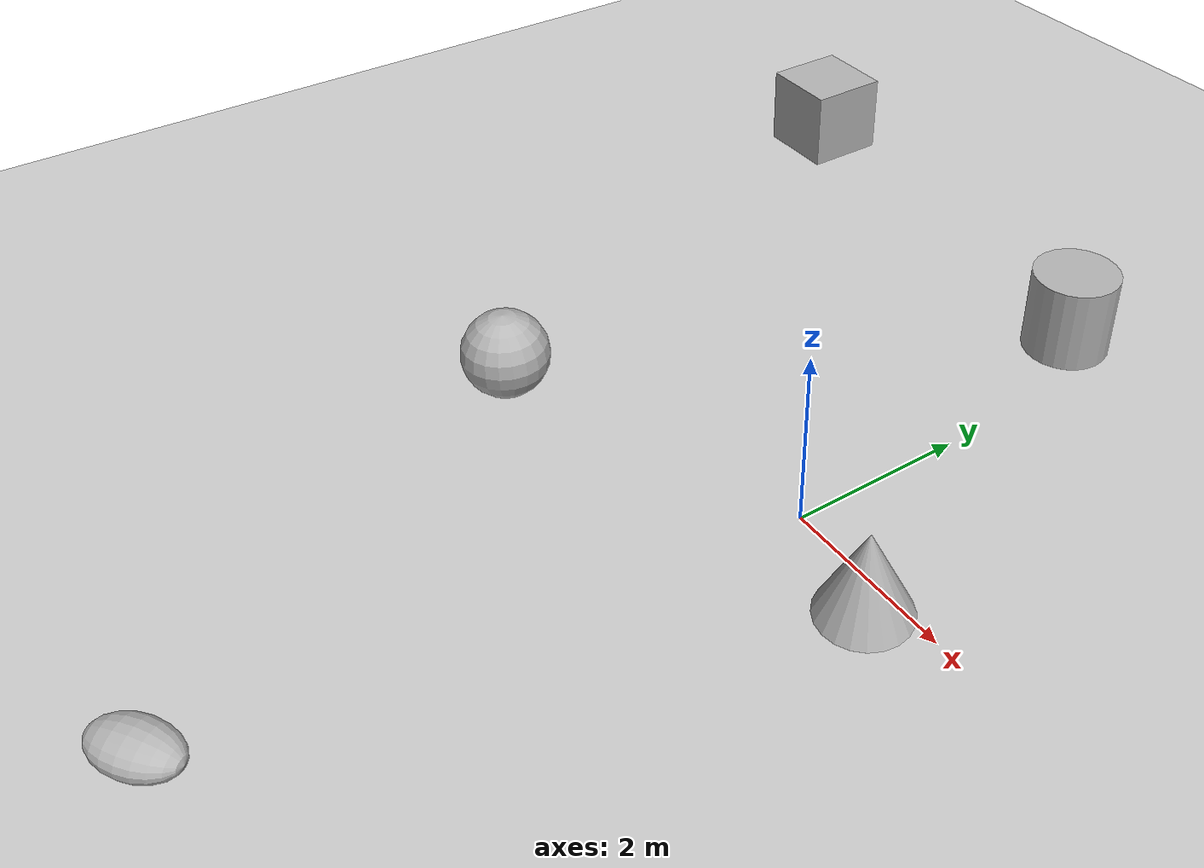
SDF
<sdf version='1.10'>
  <world name='empty'>
    <physics name='1ms' type='ode'>
      <max_step_size>0.001</max_step_size>
      <real_time_factor>1</real_time_factor>
      <real_time_update_rate>1000</real_time_update_rate>
    </physics>
    <plugin name='gz::sim::systems::Physics' filename='gz-sim-physics-system'/>
    <plugin name='gz::sim::systems::UserCommands' filename='gz-sim-user-commands-system'/>
    <plugin name='gz::sim::systems::SceneBroadcaster' filename='gz-sim-scene-broadcaster-system'/>
    <plugin name='gz::sim::systems::Contact' filename='gz-sim-contact-system'/>
    <plugin name="gz::sim::systems::Sensors" filename="gz-sim-sensors-system"/>
    <gravity>0 0 -9.8000000000000007</gravity>
    <magnetic_field>5.5644999999999998e-06 2.2875799999999999e-05 -4.2388400000000002e-05</magnetic_field>
    <atmosphere type='adiabatic'/>
    <scene>
      <ambient>0.400000006 0.400000006 0.400000006 1</ambient>
      <background>0.699999988 0.699999988 0.699999988 1</background>
      <shadows>true</shadows>
    </scene>
    <model name='ground_plane'>
      <static>true</static>
      <link name='link'>
        <collision name='collision'>
          <geometry>
            <plane>
              <normal>0 0 1</normal>
              <size>100 100</size>
            </plane>
          </geometry>
          <surface>
            <friction>
              <ode/>
            </friction>
            <bounce/>
            <contact/>
          </surface>
        </collision>
        <visual name='visual'>
          <geometry>
            <plane>
              <normal>0 0 1</normal>
              <size>100 100</size>
            </plane>
          </geometry>
          <material>
            <ambient>0.800000012 0.800000012 0.800000012 1</ambient>
            <diffuse>0.800000012 0.800000012 0.800000012 1</diffuse>
            <specular>0.800000012 0.800000012 0.800000012 1</specular>
          </material>
        </visual>
        <pose>0 0 0 0 0 0</pose>
        <inertial>
          <pose>0 0 0 0 0 0</pose>
          <mass>1</mass>
          <inertia>
            <ixx>1</ixx>
            <ixy>0</ixy>
            <ixz>0</ixz>
            <iyy>1</iyy>
            <iyz>0</iyz>
            <izz>1</izz>
          </inertia>
        </inertial>
        <enable_wind>false</enable_wind>
      </link>
      <pose>0 0 0 0 0 0</pose>
      <self_collide>false</self_collide>
    </model>
    <model name='cylinder'>
      <pose>-0.57212896154139514 4.329345377923679 0.49999942638036005 7.8971703549554338e-20 -1.6450523187191646e-19 -1.8624021362757096e-20</pose>
      <link name='cylinder_link'>
        <inertial>
          <inertia>
            <ixx>0.14580000000000001</ixx>
            <ixy>0</ixy>
            <ixz>0</ixz>
            <iyy>0.14580000000000001</iyy>
            <iyz>0</iyz>
            <izz>0.125</izz>
          </inertia>
          <mass>1</mass>
          <pose>0 0 0 0 0 0</pose>
        </inertial>
        <collision name='cylinder_collision'>
          <geometry>
            <cylinder>
              <radius>0.5</radius>
              <length>1</length>
            </cylinder>
          </geometry>
          <surface>
            <friction>
              <ode/>
            </friction>
            <bounce/>
            <contact/>
          </surface>
        </collision>
        <visual name='cylinder_visual'>
          <geometry>
            <cylinder>
              <radius>0.5</radius>
              <length>1</length>
            </cylinder>
          </geometry>
          <material>
            <ambient>0.300000012 0.300000012 0.300000012 1</ambient>
            <diffuse>0.699999988 0.699999988 0.699999988 1</diffuse>
            <specular>1 1 1 1</specular>
          </material>
        </visual>
        <pose>0 0 0 0 0 0</pose>
        <enable_wind>false</enable_wind>
      </link>
      <static>false</static>
      <self_collide>false</self_collide>
    </model>
    <model name='cone'>
      <pose>1.3325344420448269 -0.30308919566707293 0.49999999993296756 5.2551375645788325e-17 -7.7132841038021451e-10 2.5069439130256327e-23</pose>
      <link name='cone_link'>
        <inertial>
          <inertia>
            <ixx>0.074999999999999997</ixx>
            <ixy>0</ixy>
            <ixz>0</ixz>
            <iyy>0.074999999999999997</iyy>
            <iyz>0</iyz>
            <izz>0.074999999999999997</izz>
          </inertia>
          <mass>1</mass>
          <pose>0 0 0 0 0 0</pose>
        </inertial>
        <collision name='cone_collision'>
          <geometry>
            <cone>
              <radius>0.5</radius>
              <length>1</length>
            </cone>
          </geometry>
          <surface>
            <friction>
              <ode/>
            </friction>
            <bounce/>
            <contact/>
          </surface>
        </collision>
        <visual name='cone_visual'>
          <geometry>
            <cone>
              <radius>0.5</radius>
              <length>1</length>
            </cone>
          </geometry>
          <material>
            <ambient>0.300000012 0.300000012 0.300000012 1</ambient>
            <diffuse>0.699999988 0.699999988 0.699999988 1</diffuse>
            <specular>1 1 1 1</specular>
          </material>
        </visual>
        <pose>0 0 0 0 0 0</pose>
        <enable_wind>false</enable_wind>
      </link>
      <static>false</static>
      <self_collide>false</self_collide>
    </model>
    <model name='sphere'>
      <pose>-3.489631510391682 -1.4107748924063077 0.499999999902001 0 0 0</pose>
      <link name='sphere_link'>
        <inertial>
          <inertia>
            <ixx>0.10000000000000001</ixx>
            <ixy>0</ixy>
            <ixz>0</ixz>
            <iyy>0.10000000000000001</iyy>
            <iyz>0</iyz>
            <izz>0.10000000000000001</izz>
          </inertia>
          <mass>1</mass>
          <pose>0 0 0 0 0 0</pose>
        </inertial>
        <collision name='sphere_collision'>
          <geometry>
            <sphere>
              <radius>0.5</radius>
            </sphere>
          </geometry>
          <surface>
            <friction>
              <ode/>
            </friction>
            <bounce/>
            <contact/>
          </surface>
        </collision>
        <visual name='sphere_visual'>
          <geometry>
            <sphere>
              <radius>0.5</radius>
            </sphere>
          </geometry>
          <material>
            <ambient>0.300000012 0.300000012 0.300000012 1</ambient>
            <diffuse>0.699999988 0.699999988 0.699999988 1</diffuse>
            <specular>1 1 1 1</specular>
          </material>
        </visual>
        <pose>0 0 0 0 0 0</pose>
        <enable_wind>false</enable_wind>
      </link>
      <static>false</static>
      <self_collide>false</self_collide>
    </model>
    <model name='box'>
      <pose>-5.9588073979472007 5.063655336463821 0.49999999990199806 6.2287739151293738e-22 9.3279666454713669e-22 -3.6315533669320137e-22</pose>
      <link name='box_link'>
        <inertial>
          <inertia>
            <ixx>0.16666</ixx>
            <ixy>0</ixy>
            <ixz>0</ixz>
            <iyy>0.16666</iyy>
            <iyz>0</iyz>
            <izz>0.16666</izz>
          </inertia>
          <mass>1</mass>
          <pose>0 0 0 0 0 0</pose>
        </inertial>
        <collision name='box_collision'>
          <geometry>
            <box>
              <size>1 1 1</size>
            </box>
          </geometry>
          <surface>
            <friction>
              <ode/>
            </friction>
            <bounce/>
            <contact/>
          </surface>
        </collision>
        <visual name='box_visual'>
          <geometry>
            <box>
              <size>1 1 1</size>
            </box>
          </geometry>
          <material>
            <ambient>0.300000012 0.300000012 0.300000012 1</ambient>
            <diffuse>0.699999988 0.699999988 0.699999988 1</diffuse>
            <specular>1 1 1 1</specular>
          </material>
        </visual>
        <pose>0 0 0 0 0 0</pose>
        <enable_wind>false</enable_wind>
      </link>
      <static>false</static>
      <self_collide>false</self_collide>
    </model>
    <model name='ellipsoid'>
      <pose>-0.80985509193913896 -6.4234252893352766 0.18666847841342826 1.5707962991203326 -1.3774885865955253 -0.98418998516894407</pose>
      <link name='ellipsoid_link'>
        <inertial>
          <inertia>
            <ixx>0.068000000000000005</ixx>
            <ixy>0</ixy>
            <ixz>0</ixz>
            <iyy>0.058000000000000003</iyy>
            <iyz>0</iyz>
            <izz>0.025999999999999999</izz>
          </inertia>
          <mass>1</mass>
          <pose>0 0 0 0 0 0</pose>
        </inertial>
        <collision name='ellipsoid_collision'>
          <geometry>
            <ellipsoid>
              <radii>0.20000000000000001 0.29999999999999999 0.5</radii>
            </ellipsoid>
          </geometry>
          <surface>
            <friction>
              <ode/>
            </friction>
            <bounce/>
            <contact/>
          </surface>
        </collision>
        <visual name='ellipsoid_visual'>
          <geometry>
            <ellipsoid>
              <radii>0.20000000000000001 0.29999999999999999 0.5</radii>
            </ellipsoid>
          </geometry>
          <material>
            <ambient>0.300000012 0.300000012 0.300000012 1</ambient>
            <diffuse>0.699999988 0.699999988 0.699999988 1</diffuse>
            <specular>1 1 1 1</specular>
          </material>
        </visual>
        <pose>0 0 0 0 0 0</pose>
        <enable_wind>false</enable_wind>
      </link>
      <static>false</static>
      <self_collide>false</self_collide>
    </model>
    <light name='sun' type='directional'>
      <pose>0 0 10 0 0 0</pose>
      <cast_shadows>true</cast_shadows>
      <intensity>1</intensity>
      <direction>-0.5 0.10000000000000001 -0.90000000000000002</direction>
      <diffuse>0.800000012 0.800000012 0.800000012 1</diffuse>
      <specular>0.200000003 0.200000003 0.200000003 1</specular>
      <attenuation>
        <range>1000</range>
        <linear>0.0099999997764825821</linear>
        <constant>0.89999997615814209</constant>
        <quadratic>0.0010000000474974513</quadratic>
      </attenuation>
      <spot>
        <inner_angle>0</inner_angle>
        <outer_angle>0</outer_angle>
        <falloff>0</falloff>
      </spot>
    </light>
  </world>
</sdf>
